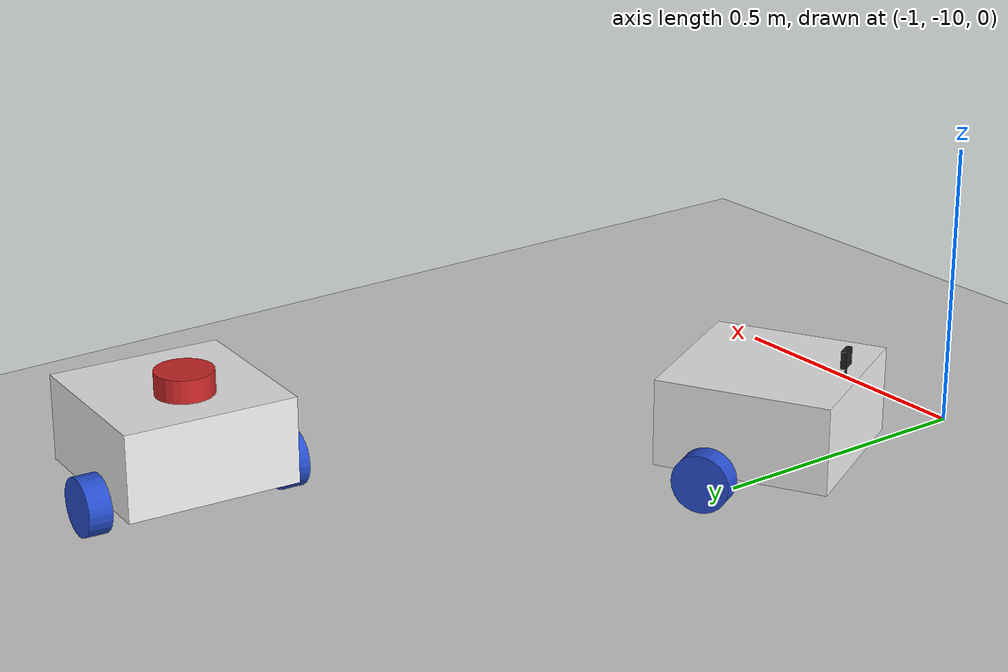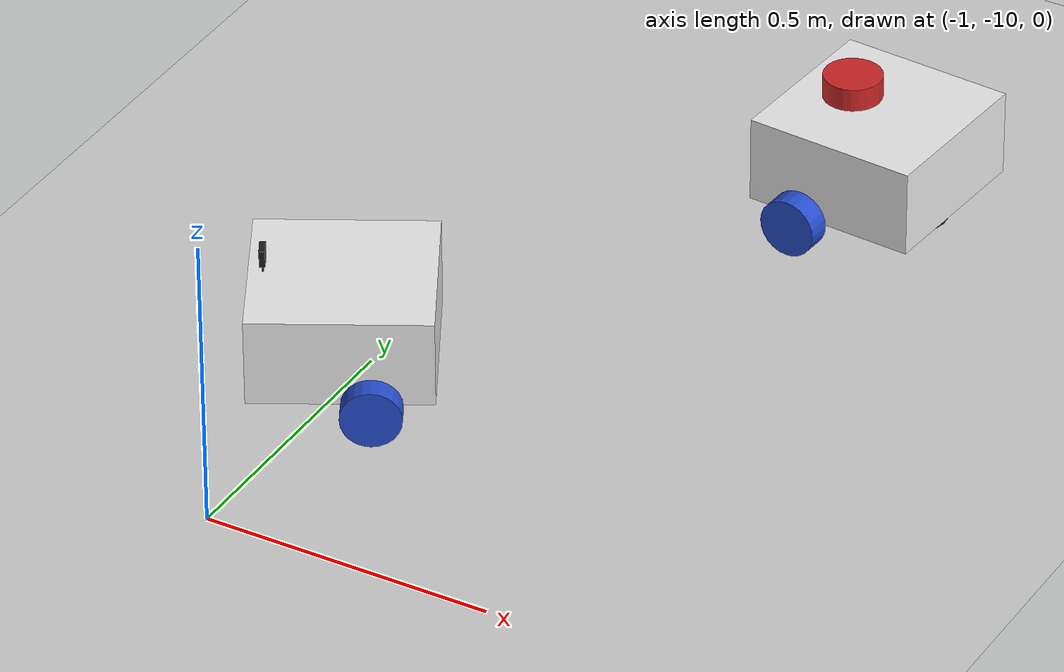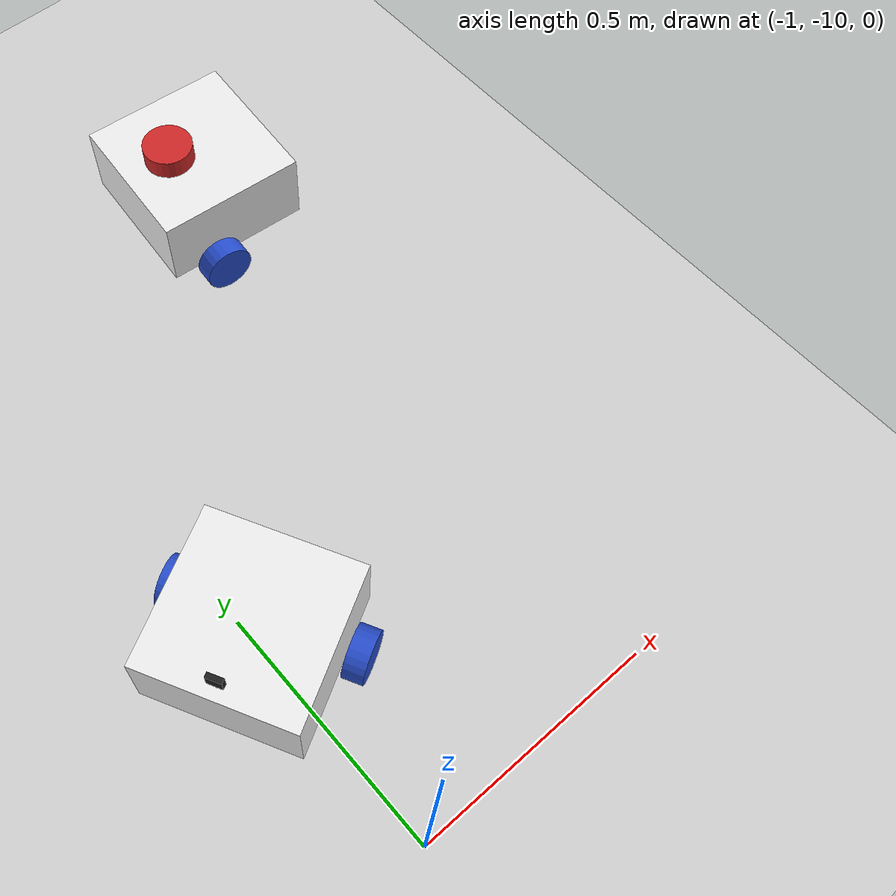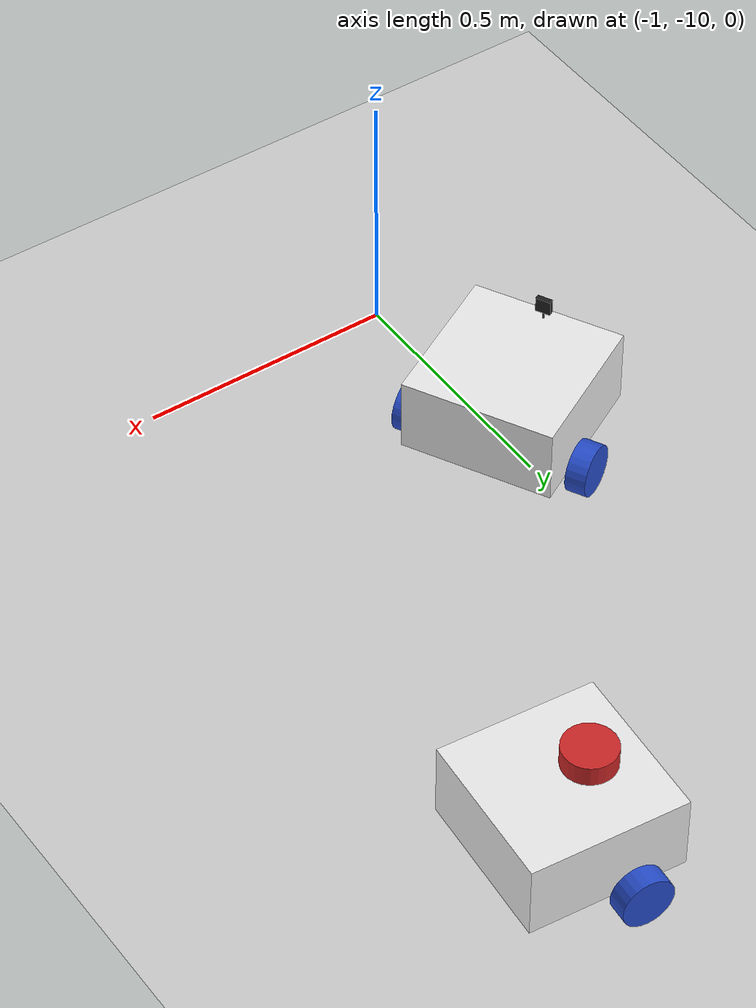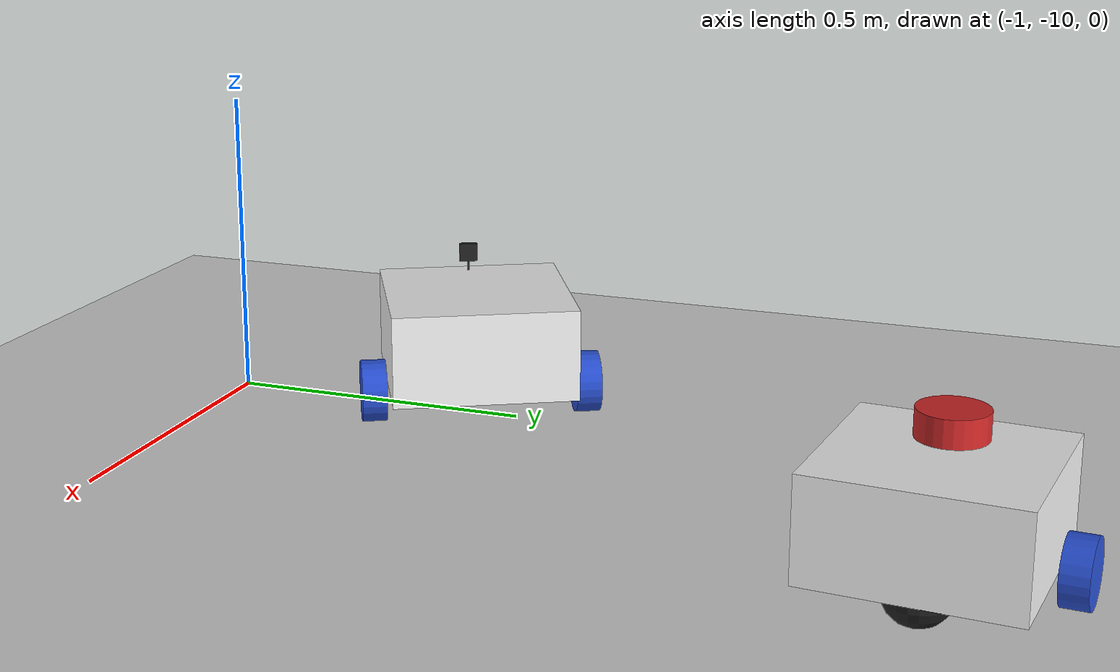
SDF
<sdf version="1.7">
 <world name="default">
  <light name="sun" type="directional">
   <pose>0 0 10 0 -0 0</pose>
   <diffuse>0.8 0.8 0.8 1</diffuse>
   <specular>0.2 0.2 0.2 1</specular>
   <attenuation>
    <range>1000</range>
    <constant>0.9</constant>
    <linear>0.01</linear>
    <quadratic>0.001</quadratic>
   </attenuation>
   <direction>-0.5 0.1 -0.9</direction>
   <spot><inner_angle>0</inner_angle><outer_angle>0</outer_angle><falloff>0</falloff></spot>
  </light>
  <model name="ground_plane">
   <static>1</static>
   <link name="link">
    <collision name="collision">
     <geometry><plane><normal>0 0 1</normal><size>100 100</size></plane></geometry>
     <surface><friction><ode><mu>100</mu><mu2>50</mu2></ode></friction></surface>
    </collision>
    <visual name="visual">
     <cast_shadows>0</cast_shadows>
     <geometry><plane><normal>0 0 1</normal><size>100 100</size></plane></geometry>
     <material>
      <script><uri>file://media/materials/scripts/gazebo.material</uri><name>Gazebo/Grey</name></script>
     </material>
    </visual>
   </link>
  </model>
  <gravity>0 0 -9.8</gravity>
  <magnetic_field>6e-06 2.3e-05 -4.2e-05</magnetic_field>
  <atmosphere type="adiabatic"/>
  <physics type="ode">
   <max_step_size>0.001</max_step_size>
   <real_time_factor>1</real_time_factor>
   <real_time_update_rate>1000</real_time_update_rate>
  </physics>
  <scene><ambient>0.4 0.4 0.4 1</ambient><background>0.7 0.7 0.7 1</background><shadows>1</shadows></scene>
  <audio><device>default</device></audio>
  <spherical_coordinates>
   <surface_model>EARTH_WGS84</surface_model>
   <latitude_deg>0</latitude_deg>
   <longitude_deg>0</longitude_deg>
   <elevation>0</elevation>
   <heading_deg>0</heading_deg>
  </spherical_coordinates>
  <model name="bot1">
   <link name="base_link">
    <inertial>
     <pose>0.055714 0 0.078571 0 -0 0</pose>
     <mass>0.7</mass>
     <inertia>
      <ixx>0.0064169</ixx>
      <ixy>0</ixy>
      <ixz>0.00118929</ixz>
      <iyy>0.00745405</iyy>
      <iyz>0</iyz>
      <izz>0.00876214</izz>
     </inertia>
    </inertial>
    <collision name="base_link_fixed_joint_lump__chassis_collision">
     <pose>0.05 0 0.075 0 -0 0</pose>
     <geometry><box><size>0.3 0.3 0.15</size></box></geometry>
    </collision>
    <collision name="base_link_fixed_joint_lump__caster_wheel_collision_1">
     <pose>0.14 0 0 0 -0 0</pose>
     <geometry><sphere><radius>0.05</radius></sphere></geometry>
     <surface><friction><ode><mu>0.001</mu><mu2>0.001</mu2></ode></friction></surface>
    </collision>
    <collision name="base_link_fixed_joint_lump__laser_frame_collision_2">
     <pose>0 0 0.175 0 -0 0</pose>
     <geometry><cylinder><length>0.04</length><radius>0.05</radius></cylinder></geometry>
    </collision>
    <visual name="base_link_fixed_joint_lump__chassis_visual">
     <pose>0.05 0 0.075 0 -0 0</pose>
     <geometry><box><size>0.3 0.3 0.15</size></box></geometry>
     <material>
      <script><name>Gazebo/White</name><uri>file://media/materials/scripts/gazebo.material</uri></script>
     </material>
    </visual>
    <visual name="base_link_fixed_joint_lump__caster_wheel_visual_1">
     <pose>0.14 0 0 0 -0 0</pose>
     <geometry><sphere><radius>0.05</radius></sphere></geometry>
     <material>
      <script><name>Gazebo/Black</name><uri>file://media/materials/scripts/gazebo.material</uri></script>
     </material>
    </visual>
    <visual name="base_link_fixed_joint_lump__laser_frame_visual_2">
     <pose>0 0 0.175 0 -0 0</pose>
     <geometry><cylinder><length>0.04</length><radius>0.05</radius></cylinder></geometry>
     <material>
      <script><name>Gazebo/Red</name><uri>file://media/materials/scripts/gazebo.material</uri></script>
     </material>
    </visual>
    <sensor name="laser" type="ray">
     <visualize>1</visualize>
     <update_rate>10</update_rate>
     <ray>
      <scan>
       <horizontal>
        <samples>20</samples>
        <min_angle>-0.35</min_angle>
        <max_angle>0.35</max_angle>
        <resolution>1</resolution>
       </horizontal>
       <vertical><samples>1</samples><min_angle>0</min_angle><max_angle>0</max_angle></vertical>
      </scan>
      <range><min>0.3</min><max>1.5</max></range>
     </ray>
     <plugin name="laser_controller" filename="libgazebo_ros_ray_sensor.so">
      <ros><namespace>bot1</namespace><argument>~/out:=scan</argument></ros>
      <output_type>sensor_msgs/LaserScan</output_type>
      <frame_name>bot1/laser_frame</frame_name>
     </plugin>
     <pose>0 0 0.175 0 -0 0</pose>
    </sensor>
   </link>
   <joint name="left_wheel_joint" type="revolute">
    <pose relative_to="base_link">0 0.175 0 -1.5708 0 0</pose>
    <parent>base_link</parent>
    <child>left_wheel</child>
    <axis>
     <xyz>0 0 1</xyz>
     <limit><lower>-1e+16</lower><upper>1e+16</upper></limit>
     <dynamics><spring_reference>0</spring_reference><spring_stiffness>0</spring_stiffness></dynamics>
    </axis>
   </joint>
   <link name="left_wheel">
    <pose relative_to="left_wheel_joint">0 0 0 0 -0 0</pose>
    <inertial>
     <mass>0.1</mass>
     <inertia>
      <ixx>7.58333e-05</ixx>
      <ixy>0</ixy>
      <ixz>0</ixz>
      <iyy>7.58333e-05</iyy>
      <iyz>0</iyz>
      <izz>0.000125</izz>
     </inertia>
    </inertial>
    <collision name="left_wheel_collision">
     <geometry><cylinder><length>0.04</length><radius>0.05</radius></cylinder></geometry>
    </collision>
    <visual name="left_wheel_visual">
     <geometry><cylinder><length>0.04</length><radius>0.05</radius></cylinder></geometry>
     <material>
      <script><name>Gazebo/Blue</name><uri>file://media/materials/scripts/gazebo.material</uri></script>
     </material>
    </visual>
   </link>
   <joint name="right_wheel_joint" type="revolute">
    <pose relative_to="base_link">0 -0.175 0 1.5708 -0 0</pose>
    <parent>base_link</parent>
    <child>right_wheel</child>
    <axis>
     <xyz>0 0 -1</xyz>
     <limit><lower>-1e+16</lower><upper>1e+16</upper></limit>
     <dynamics><spring_reference>0</spring_reference><spring_stiffness>0</spring_stiffness></dynamics>
    </axis>
   </joint>
   <link name="right_wheel">
    <pose relative_to="right_wheel_joint">0 0 0 0 -0 0</pose>
    <inertial>
     <mass>0.1</mass>
     <inertia>
      <ixx>7.58333e-05</ixx>
      <ixy>0</ixy>
      <ixz>0</ixz>
      <iyy>7.58333e-05</iyy>
      <iyz>0</iyz>
      <izz>0.000125</izz>
     </inertia>
    </inertial>
    <collision name="right_wheel_collision">
     <geometry><cylinder><length>0.04</length><radius>0.05</radius></cylinder></geometry>
    </collision>
    <visual name="right_wheel_visual">
     <geometry><cylinder><length>0.04</length><radius>0.05</radius></cylinder></geometry>
     <material>
      <script><name>Gazebo/Blue</name><uri>file://media/materials/scripts/gazebo.material</uri></script>
     </material>
    </visual>
   </link>
   <static>0</static>
   <pose>-0.546296 -8.72316 0.06017 -2.2e-05 -1.4e-05 -0.083653</pose>
   <plugin name="bot1_diff_drive" filename="libgazebo_ros_diff_drive.so">
    <left_joint>left_wheel_joint</left_joint>
    <right_joint>right_wheel_joint</right_joint>
    <wheel_separation>0.35</wheel_separation>
    <wheel_diameter>0.1</wheel_diameter>
    <max_wheel_torque>200</max_wheel_torque>
    <max_wheel_acceleration>10.0</max_wheel_acceleration>
    <ros><argument>cmd_vel:=bot1/cmd_vel</argument><argument>odom:=bot1/odom</argument></ros>
    <publish_odom>1</publish_odom>
    <publish_odom_tf>1</publish_odom_tf>
    <publish_wheel_tf>0</publish_wheel_tf>
    <odometry_frame>bot1/odom</odometry_frame>
    <robot_base_frame>bot1/base_link</robot_base_frame>
   </plugin>
   <plugin name="bot1/joint_states" filename="libgazebo_ros_joint_state_publisher.so">
    <ros><namespace>bot1</namespace><remapping>~/out:=joint_states</remapping></ros>
    <update_rate>30</update_rate>
    <joint_name>left_joint</joint_name>
    <joint_name>right_joint</joint_name>
   </plugin>
  </model>
  <model name="bot2">
   <link name="base_link">
    <inertial>
     <pose>0.065 0 0.0625 0 -0 0</pose>
     <mass>0.6</mass>
     <inertia>
      <ixx>0.00525625</ixx>
      <ixy>0</ixy>
      <ixz>0.0005625</ixz>
      <iyy>0.00593125</iyy>
      <iyz>0</iyz>
      <izz>0.008275</izz>
     </inertia>
    </inertial>
    <collision name="base_link_fixed_joint_lump__chassis_collision">
     <pose>0.05 0 0.075 0 -0 0</pose>
     <geometry><box><size>0.3 0.3 0.15</size></box></geometry>
    </collision>
    <collision name="base_link_fixed_joint_lump__caster_wheel_collision_1">
     <pose>0.14 0 0 0 -0 0</pose>
     <geometry><sphere><radius>0.05</radius></sphere></geometry>
     <surface><friction><ode><mu>0.001</mu><mu2>0.001</mu2></ode></friction></surface>
    </collision>
    <visual name="base_link_fixed_joint_lump__chassis_visual">
     <pose>0.05 0 0.075 0 -0 0</pose>
     <geometry><box><size>0.3 0.3 0.15</size></box></geometry>
     <material>
      <script><name>Gazebo/White</name><uri>file://media/materials/scripts/gazebo.material</uri></script>
     </material>
    </visual>
    <visual name="base_link_fixed_joint_lump__camera_link_visual_1">
     <pose>0.176 0 0.181 0 -0 0</pose>
     <geometry><box><size>0.01 0.03 0.03</size></box></geometry>
     <material>
      <script><name>Gazebo/Black</name><uri>file://media/materials/scripts/gazebo.material</uri></script>
     </material>
    </visual>
    <visual name="base_link_fixed_joint_lump__camera_link_visual_2">
     <pose>0.176 0 0.131 0 -0 0</pose>
     <geometry><cylinder><length>0.1</length><radius>0.002</radius></cylinder></geometry>
     <material>
      <script><name>Gazebo/Black</name><uri>file://media/materials/scripts/gazebo.material</uri></script>
     </material>
    </visual>
    <visual name="base_link_fixed_joint_lump__caster_wheel_visual_3">
     <pose>0.14 0 0 0 -0 0</pose>
     <geometry><sphere><radius>0.05</radius></sphere></geometry>
     <material>
      <script><name>Gazebo/Black</name><uri>file://media/materials/scripts/gazebo.material</uri></script>
     </material>
    </visual>
    <sensor name="camera" type="camera">
     <visualize>1</visualize>
     <update_rate>10</update_rate>
     <camera>
      <horizontal_fov>1.089</horizontal_fov>
      <image><format>R8G8B8</format><width>450</width><height>250</height></image>
      <clip><near>0.05</near><far>8</far></clip>
     </camera>
     <plugin name="camera_controller" filename="libgazebo_ros_camera.so">
      <frame_name>camera_link_optical</frame_name>
     </plugin>
     <pose>0.176 0 0.181 0 -0 0</pose>
    </sensor>
   </link>
   <joint name="left_wheel_joint" type="revolute">
    <pose relative_to="base_link">0 0.175 0 -1.5708 0 0</pose>
    <parent>base_link</parent>
    <child>left_wheel</child>
    <axis>
     <xyz>0 0 1</xyz>
     <limit><lower>-1e+16</lower><upper>1e+16</upper></limit>
     <dynamics><spring_reference>0</spring_reference><spring_stiffness>0</spring_stiffness></dynamics>
    </axis>
   </joint>
   <link name="left_wheel">
    <pose relative_to="left_wheel_joint">0 0 0 0 -0 0</pose>
    <inertial>
     <mass>0.1</mass>
     <inertia>
      <ixx>7.58333e-05</ixx>
      <ixy>0</ixy>
      <ixz>0</ixz>
      <iyy>7.58333e-05</iyy>
      <iyz>0</iyz>
      <izz>0.000125</izz>
     </inertia>
    </inertial>
    <collision name="left_wheel_collision">
     <geometry><cylinder><length>0.04</length><radius>0.05</radius></cylinder></geometry>
    </collision>
    <visual name="left_wheel_visual">
     <geometry><cylinder><length>0.04</length><radius>0.05</radius></cylinder></geometry>
     <material>
      <script><name>Gazebo/Blue</name><uri>file://media/materials/scripts/gazebo.material</uri></script>
     </material>
    </visual>
   </link>
   <joint name="right_wheel_joint" type="revolute">
    <pose relative_to="base_link">0 -0.175 0 1.5708 -0 0</pose>
    <parent>base_link</parent>
    <child>right_wheel</child>
    <axis>
     <xyz>0 0 -1</xyz>
     <limit><lower>-1e+16</lower><upper>1e+16</upper></limit>
     <dynamics><spring_reference>0</spring_reference><spring_stiffness>0</spring_stiffness></dynamics>
    </axis>
   </joint>
   <link name="right_wheel">
    <pose relative_to="right_wheel_joint">0 0 0 0 -0 0</pose>
    <inertial>
     <mass>0.1</mass>
     <inertia>
      <ixx>7.58333e-05</ixx>
      <ixy>0</ixy>
      <ixz>0</ixz>
      <iyy>7.58333e-05</iyy>
      <iyz>0</iyz>
      <izz>0.000125</izz>
     </inertia>
    </inertial>
    <collision name="right_wheel_collision">
     <geometry><cylinder><length>0.04</length><radius>0.05</radius></cylinder></geometry>
    </collision>
    <visual name="right_wheel_visual">
     <geometry><cylinder><length>0.04</length><radius>0.05</radius></cylinder></geometry>
     <material>
      <script><name>Gazebo/Blue</name><uri>file://media/materials/scripts/gazebo.material</uri></script>
     </material>
    </visual>
   </link>
   <static>0</static>
   <pose>-0.962399 -9.54804 0.060167 -2.9e-05 -3e-06 -2.64863</pose>
   <plugin name="bot2_diff_drive" filename="libgazebo_ros_diff_drive.so">
    <left_joint>left_wheel_joint</left_joint>
    <right_joint>right_wheel_joint</right_joint>
    <wheel_separation>0.35</wheel_separation>
    <wheel_diameter>0.1</wheel_diameter>
    <max_wheel_torque>200</max_wheel_torque>
    <max_wheel_acceleration>10.0</max_wheel_acceleration>
    <ros><argument>cmd_vel:=bot2/cmd_vel</argument><argument>odom:=bot2/odom</argument></ros>
    <publish_odom>1</publish_odom>
    <publish_odom_tf>1</publish_odom_tf>
    <publish_wheel_tf>0</publish_wheel_tf>
    <odometry_frame>bot2/odom</odometry_frame>
    <robot_base_frame>bot2/base_link</robot_base_frame>
   </plugin>
   <plugin name="bot2/joint_states" filename="libgazebo_ros_joint_state_publisher.so">
    <ros><namespace>bot2</namespace><remapping>~/out:=joint_states</remapping></ros>
    <update_rate>30</update_rate>
    <joint_name>left_joint</joint_name>
    <joint_name>right_joint</joint_name>
   </plugin>
  </model>
 </world>
</sdf>
